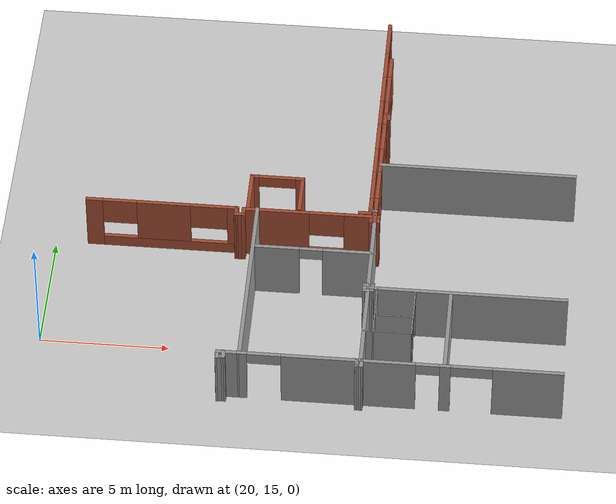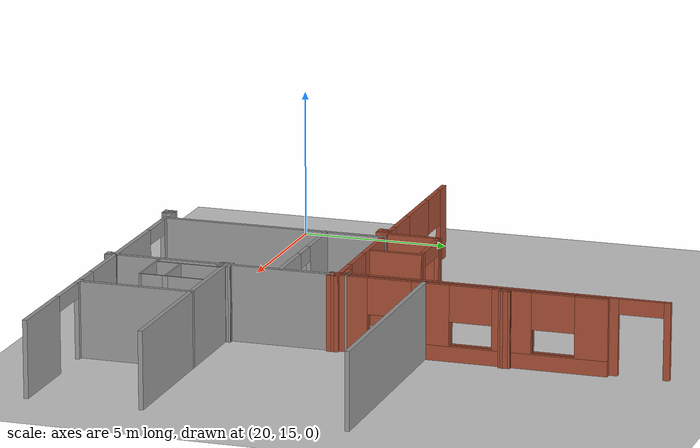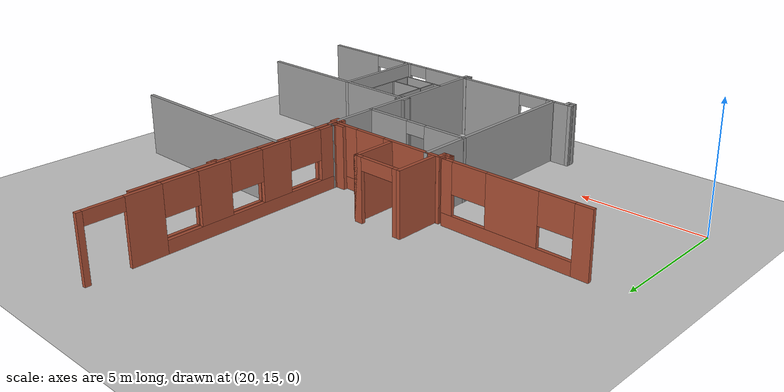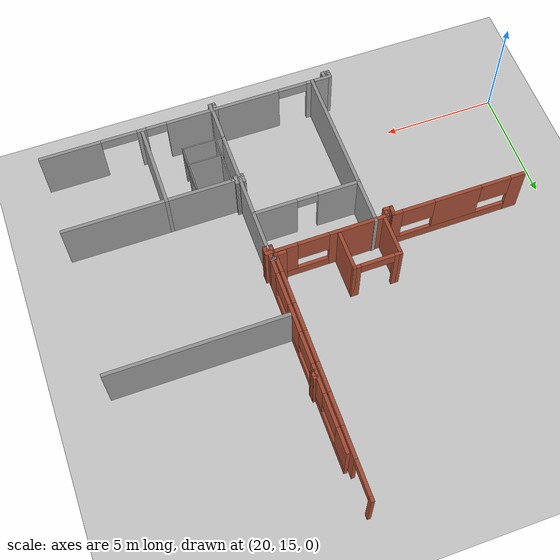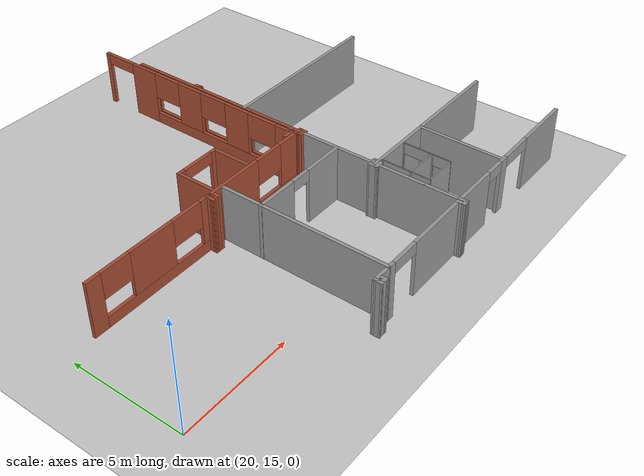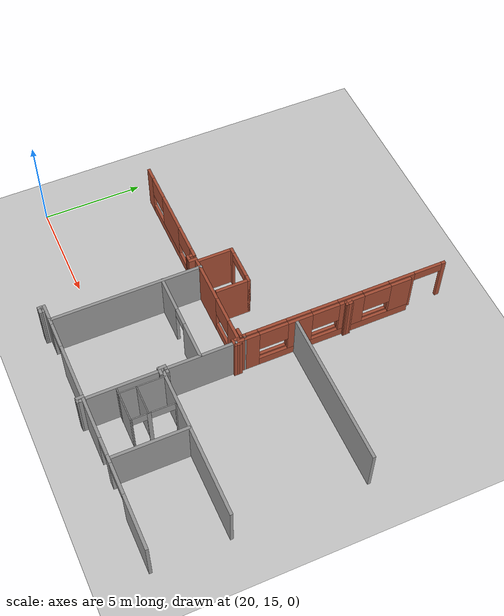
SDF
<sdf version="1.6">
 <world name="default">
  <model name="ground_plane">
   <static>1</static>
   <link name="link">
    <collision name="collision">
     <geometry><plane><normal>0 0 1</normal><size>100 100</size></plane></geometry>
     <surface><friction><ode><mu>100</mu><mu2>50</mu2></ode></friction></surface>
    </collision>
    <visual name="visual">
     <cast_shadows>0</cast_shadows>
     <geometry><plane><normal>0 0 1</normal><size>100 100</size></plane></geometry>
     <material>
      <script><uri>file://media/materials/scripts/gazebo.material</uri><name>Gazebo/Grey</name></script>
     </material>
    </visual>
   </link>
  </model>
  <model name="CVSSP">
   <pose>23.8714 24.094 0 0 -0 0</pose>
   <link name="Wall_115">
    <pose>12.4857 -11.244 0 0 -0 3.14117</pose>
    <visual name="Wall_115_Visual_0">
     <pose>-2.52803 0 1.25 0 -0 0</pose>
     <geometry><box><size>2.69541 0.15 2.5</size></box></geometry>
     <material>
      <script><uri>file://media/materials/scripts/gazebo.material</uri><name>Gazebo/Grey</name></script>
      <ambient>0.588235 0.588235 0.588235 1</ambient>
     </material>
    </visual>
    <collision name="Wall_115_Collision_0">
     <geometry><box><size>2.69541 0.15 2.5</size></box></geometry>
     <pose>-2.52803 0 1.25 0 -0 0</pose>
    </collision>
    <visual name="Wall_115_Visual_1">
     <pose>0.612242 0 1.25 0 -0 0</pose>
     <geometry><box><size>0.417444 0.15 2.5</size></box></geometry>
     <material>
      <script><uri>file://media/materials/scripts/gazebo.material</uri><name>Gazebo/Grey</name></script>
      <ambient>0.588235 0.588235 0.588235 1</ambient>
     </material>
    </visual>
    <collision name="Wall_115_Collision_1">
     <geometry><box><size>0.417444 0.15 2.5</size></box></geometry>
     <pose>0.612242 0 1.25 0 -0 0</pose>
    </collision>
    <visual name="Wall_115_Visual_2">
     <pose>2.79835 0 1.25 0 -0 0</pose>
     <geometry><box><size>2.15477 0.15 2.5</size></box></geometry>
     <material>
      <script><uri>file://media/materials/scripts/gazebo.material</uri><name>Gazebo/Grey</name></script>
      <ambient>0.588235 0.588235 0.588235 1</ambient>
     </material>
    </visual>
    <collision name="Wall_115_Collision_2">
     <geometry><box><size>2.15477 0.15 2.5</size></box></geometry>
     <pose>2.79835 0 1.25 0 -0 0</pose>
    </collision>
    <visual name="Wall_115_Visual_3">
     <pose>-0.388402 0 2.25 0 -0 0</pose>
     <geometry><box><size>1.58384 0.15 0.5</size></box></geometry>
     <material>
      <script><uri>file://media/materials/scripts/gazebo.material</uri><name>Gazebo/Grey</name></script>
      <ambient>0.588235 0.588235 0.588235 1</ambient>
     </material>
    </visual>
    <collision name="Wall_115_Collision_3">
     <geometry><box><size>1.58384 0.15 0.5</size></box></geometry>
     <pose>-0.388402 0 2.25 0 -0 0</pose>
    </collision>
    <visual name="Wall_115_Visual_4">
     <pose>1.27096 0 2.25 0 -0 0</pose>
     <geometry><box><size>0.9 0.15 0.5</size></box></geometry>
     <material>
      <script><uri>file://media/materials/scripts/gazebo.material</uri><name>Gazebo/Grey</name></script>
      <ambient>0.588235 0.588235 0.588235 1</ambient>
     </material>
    </visual>
    <collision name="Wall_115_Collision_4">
     <geometry><box><size>0.9 0.15 0.5</size></box></geometry>
     <pose>1.27096 0 2.25 0 -0 0</pose>
    </collision>
   </link>
   <link name="Wall_116">
    <collision name="Wall_116_Collision">
     <geometry><box><size>7.43734 0.15 2.5</size></box></geometry>
     <pose>0 0 1.25 0 -0 0</pose>
    </collision>
    <visual name="Wall_116_Visual">
     <pose>0 0 1.25 0 -0 0</pose>
     <geometry><box><size>7.43734 0.15 2.5</size></box></geometry>
     <material>
      <script><uri>file://media/materials/scripts/gazebo.material</uri><name>Gazebo/Grey</name></script>
      <ambient>1 1 1 1</ambient>
     </material>
    </visual>
    <pose>8.67152 -7.59872 0 0 -0 1.57447</pose>
   </link>
   <link name="Wall_118">
    <collision name="Wall_118_Collision">
     <geometry><box><size>0.6489 0.15 2.5</size></box></geometry>
     <pose>0 0 1.25 0 -0 0</pose>
    </collision>
    <visual name="Wall_118_Visual">
     <pose>0 0 1.25 0 -0 0</pose>
     <geometry><box><size>0.6489 0.15 2.5</size></box></geometry>
     <material>
      <script><uri>file://media/materials/scripts/gazebo.material</uri><name>Gazebo/Bricks</name></script>
      <ambient>1 1 1 1</ambient>
     </material>
    </visual>
    <pose>8.65546 -3.70564 0 0 0 -1.56013</pose>
   </link>
   <link name="Wall_119">
    <collision name="Wall_119_Collision">
     <geometry><box><size>0.297808 0.15 2.5</size></box></geometry>
     <pose>0 0 1.25 0 -0 0</pose>
    </collision>
    <visual name="Wall_119_Visual">
     <pose>0 0 1.25 0 -0 0</pose>
     <geometry><box><size>0.297808 0.15 2.5</size></box></geometry>
     <material>
      <script><uri>file://media/materials/scripts/gazebo.material</uri><name>Gazebo/Bricks</name></script>
      <ambient>1 1 1 1</ambient>
     </material>
    </visual>
    <pose>8.58427 -3.95789 0 0 0 -3.10353</pose>
   </link>
   <link name="Wall_120">
    <collision name="Wall_120_Collision">
     <geometry><box><size>0.331632 0.15 2.5</size></box></geometry>
     <pose>0 0 1.25 0 -0 0</pose>
    </collision>
    <visual name="Wall_120_Visual">
     <pose>0 0 1.25 0 -0 0</pose>
     <geometry><box><size>0.331632 0.15 2.5</size></box></geometry>
     <material>
      <script><uri>file://media/materials/scripts/gazebo.material</uri><name>Gazebo/Bricks</name></script>
      <ambient>1 1 1 1</ambient>
     </material>
    </visual>
    <pose>8.51042 -3.86996 0 0 -0 1.5708</pose>
   </link>
   <link name="Wall_121">
    <collision name="Wall_121_Collision">
     <geometry><box><size>0.41465 0.15 2.5</size></box></geometry>
     <pose>0 0 1.25 0 -0 0</pose>
    </collision>
    <visual name="Wall_121_Visual">
     <pose>0 0 1.25 0 -0 0</pose>
     <geometry><box><size>0.41465 0.15 2.5</size></box></geometry>
     <material>
      <script><uri>file://media/materials/scripts/gazebo.material</uri><name>Gazebo/Bricks</name></script>
      <ambient>1 1 1 1</ambient>
     </material>
    </visual>
    <pose>8.64275 -3.77922 0 0 -0 0</pose>
   </link>
   <link name="Wall_122">
    <collision name="Wall_122_Collision">
     <geometry><box><size>0.399527 0.15 2.5</size></box></geometry>
     <pose>0 0 1.25 0 -0 0</pose>
    </collision>
    <visual name="Wall_122_Visual">
     <pose>0 0 1.25 0 -0 0</pose>
     <geometry><box><size>0.399527 0.15 2.5</size></box></geometry>
     <material>
      <script><uri>file://media/materials/scripts/gazebo.material</uri><name>Gazebo/Bricks</name></script>
      <ambient>1 1 1 1</ambient>
     </material>
    </visual>
    <pose>8.77507 -3.90399 0 0 0 -1.5708</pose>
   </link>
   <link name="Wall_123">
    <collision name="Wall_123_Collision">
     <geometry><box><size>0.415082 0.15 2.5</size></box></geometry>
     <pose>0 0 1.25 0 -0 0</pose>
    </collision>
    <visual name="Wall_123_Visual">
     <pose>0 0 1.25 0 -0 0</pose>
     <geometry><box><size>0.415082 0.15 2.5</size></box></geometry>
     <material>
      <script><uri>file://media/materials/scripts/gazebo.material</uri><name>Gazebo/Bricks</name></script>
      <ambient>1 1 1 1</ambient>
     </material>
    </visual>
    <pose>8.64275 -4.02875 0 0 -0 3.14159</pose>
   </link>
   <link name="Wall_125">
    <collision name="Wall_125_Collision">
     <geometry><box><size>7.75 0.15 2.5</size></box></geometry>
     <pose>0 0 1.25 0 -0 0</pose>
    </collision>
    <visual name="Wall_125_Visual">
     <pose>0 0 1.25 0 -0 0</pose>
     <geometry><box><size>7.75 0.15 2.5</size></box></geometry>
     <material>
      <script><uri>file://media/materials/scripts/gazebo.material</uri><name>Gazebo/Grey</name></script>
      <ambient>1 1 1 1</ambient>
     </material>
    </visual>
    <pose>12.4797 -0.937315 0 0 -0 3.14159</pose>
   </link>
   <link name="Wall_127">
    <collision name="Wall_127_Collision">
     <geometry><box><size>7.75 0.15 2.5</size></box></geometry>
     <pose>0 0 1.25 0 -0 0</pose>
    </collision>
    <visual name="Wall_127_Visual">
     <pose>0 0 1.25 0 -0 0</pose>
     <geometry><box><size>7.75 0.15 2.5</size></box></geometry>
     <material>
      <script><uri>file://media/materials/scripts/gazebo.material</uri><name>Gazebo/Grey</name></script>
      <ambient>0.588235 0.588235 0.588235 1</ambient>
     </material>
    </visual>
    <pose>12.4552 -7.51532 0 0 -0 0</pose>
   </link>
   <link name="Wall_129">
    <collision name="Wall_129_Collision">
     <geometry><box><size>3.75 0.15 2.5</size></box></geometry>
     <pose>0 0 1.25 0 -0 0</pose>
    </collision>
    <visual name="Wall_129_Visual">
     <pose>0 0 1.25 0 -0 0</pose>
     <geometry><box><size>3.75 0.15 2.5</size></box></geometry>
     <material>
      <script><uri>file://media/materials/scripts/gazebo.material</uri><name>Gazebo/Grey</name></script>
      <ambient>1 1 1 1</ambient>
     </material>
    </visual>
    <pose>11.8522 -9.31531 0 0 0 -1.5708</pose>
   </link>
   <link name="Wall_465">
    <collision name="Wall_465_Collision">
     <geometry><box><size>0.529047 0.15 2.5</size></box></geometry>
     <pose>0 0 1.25 0 -0 0</pose>
    </collision>
    <visual name="Wall_465_Visual">
     <pose>0 0 1.25 0 -0 0</pose>
     <geometry><box><size>0.529047 0.15 2.5</size></box></geometry>
     <material>
      <script><uri>file://media/materials/scripts/gazebo.material</uri><name>Gazebo/Bricks</name></script>
      <ambient>1 1 1 1</ambient>
     </material>
    </visual>
    <pose>8.25042 -3.5996 0 0 -0 0.010433</pose>
   </link>
   <link name="Wall_466">
    <collision name="Wall_466_Collision">
     <geometry><box><size>0.28943 0.15 2.5</size></box></geometry>
     <pose>0 0 1.25 0 -0 0</pose>
    </collision>
    <visual name="Wall_466_Visual">
     <pose>0 0 1.25 0 -0 0</pose>
     <geometry><box><size>0.28943 0.15 2.5</size></box></geometry>
     <material>
      <script><uri>file://media/materials/scripts/gazebo.material</uri><name>Gazebo/Bricks</name></script>
      <ambient>1 1 1 1</ambient>
     </material>
    </visual>
    <pose>8.4463 -3.5282 0 0 -0 1.47944</pose>
   </link>
   <link name="Wall_468">
    <collision name="Wall_468_Collision">
     <geometry><box><size>1.81156 0.15 2.5</size></box></geometry>
     <pose>0 0 1.25 0 -0 0</pose>
    </collision>
    <visual name="Wall_468_Visual">
     <pose>0 0 1.25 0 -0 0</pose>
     <geometry><box><size>1.81156 0.15 2.5</size></box></geometry>
     <material>
      <script><uri>file://media/materials/scripts/gazebo.material</uri><name>Gazebo/Bricks</name></script>
      <ambient>1 1 1 1</ambient>
     </material>
    </visual>
    <pose>3.68791 -2.82478 0 0 -0 1.5708</pose>
   </link>
   <link name="Wall_469">
    <pose>4.68485 -1.99401 0 0 -0 0</pose>
    <visual name="Wall_469_Visual_0">
     <pose>-0.899938 0 1.25 0 -0 0</pose>
     <geometry><box><size>0.343992 0.15 2.5</size></box></geometry>
     <material>
      <script><uri>file://media/materials/scripts/gazebo.material</uri><name>Gazebo/Bricks</name></script>
      <ambient>1 1 1 1</ambient>
     </material>
    </visual>
    <collision name="Wall_469_Collision_0">
     <geometry><box><size>0.343992 0.15 2.5</size></box></geometry>
     <pose>-0.899938 0 1.25 0 -0 0</pose>
    </collision>
    <visual name="Wall_469_Visual_1">
     <pose>0.897049 0 1.25 0 -0 0</pose>
     <geometry><box><size>0.349769 0.15 2.5</size></box></geometry>
     <material>
      <script><uri>file://media/materials/scripts/gazebo.material</uri><name>Gazebo/Bricks</name></script>
      <ambient>1 1 1 1</ambient>
     </material>
    </visual>
    <collision name="Wall_469_Collision_1">
     <geometry><box><size>0.349769 0.15 2.5</size></box></geometry>
     <pose>0.897049 0 1.25 0 -0 0</pose>
    </collision>
    <visual name="Wall_469_Visual_2">
     <pose>-0.002889 0 2.25 0 -0 0</pose>
     <geometry><box><size>1.45011 0.15 0.5</size></box></geometry>
     <material>
      <script><uri>file://media/materials/scripts/gazebo.material</uri><name>Gazebo/Bricks</name></script>
      <ambient>1 1 1 1</ambient>
     </material>
    </visual>
    <collision name="Wall_469_Collision_2">
     <geometry><box><size>1.45011 0.15 0.5</size></box></geometry>
     <pose>-0.002889 0 2.25 0 -0 0</pose>
    </collision>
   </link>
   <link name="Wall_470">
    <collision name="Wall_470_Collision">
     <geometry><box><size>1.75 0.15 2.5</size></box></geometry>
     <pose>0 0 1.25 0 -0 0</pose>
    </collision>
    <visual name="Wall_470_Visual">
     <pose>0 0 1.25 0 -0 0</pose>
     <geometry><box><size>1.75 0.15 2.5</size></box></geometry>
     <material>
      <script><uri>file://media/materials/scripts/gazebo.material</uri><name>Gazebo/Bricks</name></script>
      <ambient>1 1 1 1</ambient>
     </material>
    </visual>
    <pose>5.68178 -2.79401 0 0 0 -1.5708</pose>
   </link>
   <link name="Wall_510">
    <pose>6.36165 -11.2424 0 0 -0 3.14159</pose>
    <visual name="Wall_510_Visual_0">
     <pose>-0.840975 0 1.25 0 -0 0</pose>
     <geometry><box><size>3.06805 0.15 2.5</size></box></geometry>
     <material>
      <script><uri>file://media/materials/scripts/gazebo.material</uri><name>Gazebo/Grey</name></script>
      <ambient>0.588235 0.588235 0.588235 1</ambient>
     </material>
    </visual>
    <collision name="Wall_510_Collision_0">
     <geometry><box><size>3.06805 0.15 2.5</size></box></geometry>
     <pose>-0.840975 0 1.25 0 -0 0</pose>
    </collision>
    <visual name="Wall_510_Visual_1">
     <pose>2.18353 0 1.25 0 -0 0</pose>
     <geometry><box><size>0.382947 0.15 2.5</size></box></geometry>
     <material>
      <script><uri>file://media/materials/scripts/gazebo.material</uri><name>Gazebo/Grey</name></script>
      <ambient>0.588235 0.588235 0.588235 1</ambient>
     </material>
    </visual>
    <collision name="Wall_510_Collision_1">
     <geometry><box><size>0.382947 0.15 2.5</size></box></geometry>
     <pose>2.18353 0 1.25 0 -0 0</pose>
    </collision>
    <visual name="Wall_510_Visual_2">
     <pose>1.34255 0 2.25 0 -0 0</pose>
     <geometry><box><size>1.299 0.15 0.5</size></box></geometry>
     <material>
      <script><uri>file://media/materials/scripts/gazebo.material</uri><name>Gazebo/Grey</name></script>
      <ambient>0.588235 0.588235 0.588235 1</ambient>
     </material>
    </visual>
    <collision name="Wall_510_Collision_2">
     <geometry><box><size>1.299 0.15 0.5</size></box></geometry>
     <pose>1.34255 0 2.25 0 -0 0</pose>
    </collision>
   </link>
   <link name="Wall_511">
    <collision name="Wall_511_Collision">
     <geometry><box><size>7.64004 0.15 2.5</size></box></geometry>
     <pose>0 0 1.25 0 -0 0</pose>
    </collision>
    <visual name="Wall_511_Visual">
     <pose>0 0 1.25 0 -0 0</pose>
     <geometry><box><size>7.64004 0.15 2.5</size></box></geometry>
     <material>
      <script><uri>file://media/materials/scripts/gazebo.material</uri><name>Gazebo/Grey</name></script>
      <ambient>0.588235 0.588235 0.588235 1</ambient>
     </material>
    </visual>
    <pose>4.07328 -7.49736 0 0 -0 1.5739</pose>
   </link>
   <link name="Wall_513">
    <pose>6.35679 -5.70156 0 0 -0 0</pose>
    <visual name="Wall_513_Visual_0">
     <pose>-1.42856 0 1.25 0 -0 0</pose>
     <geometry><box><size>1.89288 0.15 2.5</size></box></geometry>
     <material>
      <script><uri>file://media/materials/scripts/gazebo.material</uri><name>Gazebo/Grey</name></script>
      <ambient>0.588235 0.588235 0.588235 1</ambient>
     </material>
    </visual>
    <collision name="Wall_513_Collision_0">
     <geometry><box><size>1.89288 0.15 2.5</size></box></geometry>
     <pose>-1.42856 0 1.25 0 -0 0</pose>
    </collision>
    <visual name="Wall_513_Visual_1">
     <pose>1.39644 0 1.25 0 -0 0</pose>
     <geometry><box><size>1.95712 0.15 2.5</size></box></geometry>
     <material>
      <script><uri>file://media/materials/scripts/gazebo.material</uri><name>Gazebo/Grey</name></script>
      <ambient>0.588235 0.588235 0.588235 1</ambient>
     </material>
    </visual>
    <collision name="Wall_513_Collision_1">
     <geometry><box><size>1.95712 0.15 2.5</size></box></geometry>
     <pose>1.39644 0 1.25 0 -0 0</pose>
    </collision>
    <visual name="Wall_513_Visual_2">
     <pose>-0.032121 0 2.25 0 -0 0</pose>
     <geometry><box><size>0.9 0.15 0.5</size></box></geometry>
     <material>
      <script><uri>file://media/materials/scripts/gazebo.material</uri><name>Gazebo/Grey</name></script>
      <ambient>0.588235 0.588235 0.588235 1</ambient>
     </material>
    </visual>
    <collision name="Wall_513_Collision_2">
     <geometry><box><size>0.9 0.15 0.5</size></box></geometry>
     <pose>-0.032121 0 2.25 0 -0 0</pose>
    </collision>
   </link>
   <link name="Wall_515">
    <collision name="Wall_515_Collision">
     <geometry><box><size>0.96868 0.15 2.5</size></box></geometry>
     <pose>0 0 1.25 0 -0 0</pose>
    </collision>
    <visual name="Wall_515_Visual">
     <pose>0 0 1.25 0 -0 0</pose>
     <geometry><box><size>0.96868 0.15 2.5</size></box></geometry>
     <material>
      <script><uri>file://media/materials/scripts/gazebo.material</uri><name>Gazebo/Grey</name></script>
      <ambient>0.588235 0.588235 0.588235 1</ambient>
     </material>
    </visual>
    <pose>3.67558 -11.2435 0 0 0 -3.13878</pose>
   </link>
   <link name="Wall_516">
    <collision name="Wall_516_Collision">
     <geometry><box><size>0.299942 0.15 2.5</size></box></geometry>
     <pose>0 0 1.25 0 -0 0</pose>
    </collision>
    <visual name="Wall_516_Visual">
     <pose>0 0 1.25 0 -0 0</pose>
     <geometry><box><size>0.299942 0.15 2.5</size></box></geometry>
     <material>
      <script><uri>file://media/materials/scripts/gazebo.material</uri><name>Gazebo/Grey</name></script>
      <ambient>1 1 1 1</ambient>
     </material>
    </visual>
    <pose>3.26624 -11.3194 0 0 0 -1.5708</pose>
   </link>
   <link name="Wall_809">
    <pose>0.343033 -3.76669 0 0 -0 0</pose>
    <visual name="Wall_809_Visual_0">
     <pose>-2.66868 0 1.25 0 -0 0</pose>
     <geometry><box><size>0.662631 0.15 2.5</size></box></geometry>
     <material>
      <script><uri>file://media/materials/scripts/gazebo.material</uri><name>Gazebo/Bricks</name></script>
      <ambient>1 1 1 1</ambient>
     </material>
    </visual>
    <collision name="Wall_809_Collision_0">
     <geometry><box><size>0.662631 0.15 2.5</size></box></geometry>
     <pose>-2.66868 0 1.25 0 -0 0</pose>
    </collision>
    <visual name="Wall_809_Visual_1">
     <pose>0.331316 0 0.25 0 -0 0</pose>
     <geometry><box><size>5.33737 0.15 0.5</size></box></geometry>
     <material>
      <script><uri>file://media/materials/scripts/gazebo.material</uri><name>Gazebo/Bricks</name></script>
      <ambient>1 1 1 1</ambient>
     </material>
    </visual>
    <collision name="Wall_809_Collision_1">
     <geometry><box><size>5.33737 0.15 0.5</size></box></geometry>
     <pose>0.331316 0 0.25 0 -0 0</pose>
    </collision>
    <visual name="Wall_809_Visual_2">
     <pose>0.0492 0 1.5 0 -0 0</pose>
     <geometry><box><size>2.09736 0.15 2</size></box></geometry>
     <material>
      <script><uri>file://media/materials/scripts/gazebo.material</uri><name>Gazebo/Bricks</name></script>
      <ambient>1 1 1 1</ambient>
     </material>
    </visual>
    <collision name="Wall_809_Collision_2">
     <geometry><box><size>2.09736 0.15 2</size></box></geometry>
     <pose>0.0492 0 1.5 0 -0 0</pose>
    </collision>
    <visual name="Wall_809_Visual_3">
     <pose>2.76811 0 1.5 0 -0 0</pose>
     <geometry><box><size>0.463782 0.15 2</size></box></geometry>
     <material>
      <script><uri>file://media/materials/scripts/gazebo.material</uri><name>Gazebo/Bricks</name></script>
      <ambient>1 1 1 1</ambient>
     </material>
    </visual>
    <collision name="Wall_809_Collision_3">
     <geometry><box><size>0.463782 0.15 2</size></box></geometry>
     <pose>2.76811 0 1.5 0 -0 0</pose>
    </collision>
    <visual name="Wall_809_Visual_4">
     <pose>-1.66843 0 1.9 0 -0 0</pose>
     <geometry><box><size>1.33789 0.15 1.2</size></box></geometry>
     <material>
      <script><uri>file://media/materials/scripts/gazebo.material</uri><name>Gazebo/Bricks</name></script>
      <ambient>1 1 1 1</ambient>
     </material>
    </visual>
    <collision name="Wall_809_Collision_4">
     <geometry><box><size>1.33789 0.15 1.2</size></box></geometry>
     <pose>-1.66843 0 1.9 0 -0 0</pose>
    </collision>
    <visual name="Wall_809_Visual_5">
     <pose>1.81705 0 1.9 0 -0 0</pose>
     <geometry><box><size>1.43833 0.15 1.2</size></box></geometry>
     <material>
      <script><uri>file://media/materials/scripts/gazebo.material</uri><name>Gazebo/Bricks</name></script>
      <ambient>1 1 1 1</ambient>
     </material>
    </visual>
    <collision name="Wall_809_Collision_5">
     <geometry><box><size>1.43833 0.15 1.2</size></box></geometry>
     <pose>1.81705 0 1.9 0 -0 0</pose>
    </collision>
   </link>
   <link name="Wall_810">
    <collision name="Wall_810_Collision">
     <geometry><box><size>0.453959 0.15 2.5</size></box></geometry>
     <pose>0 0 1.25 0 -0 0</pose>
    </collision>
    <visual name="Wall_810_Visual">
     <pose>0 0 1.25 0 -0 0</pose>
     <geometry><box><size>0.453959 0.15 2.5</size></box></geometry>
     <material>
      <script><uri>file://media/materials/scripts/gazebo.material</uri><name>Gazebo/Bricks</name></script>
      <ambient>1 1 1 1</ambient>
     </material>
    </visual>
    <pose>3.26225 -3.93012 0 0 0 -1.60885</pose>
   </link>
   <link name="Wall_811">
    <collision name="Wall_811_Collision">
     <geometry><box><size>0.429611 0.15 2.5</size></box></geometry>
     <pose>0 0 1.25 0 -0 0</pose>
    </collision>
    <visual name="Wall_811_Visual">
     <pose>0 0 1.25 0 -0 0</pose>
     <geometry><box><size>0.429611 0.15 2.5</size></box></geometry>
     <material>
      <script><uri>file://media/materials/scripts/gazebo.material</uri><name>Gazebo/Bricks</name></script>
      <ambient>1 1 1 1</ambient>
     </material>
    </visual>
    <pose>3.39627 -4.08199 0 0 -0 0</pose>
   </link>
   <link name="Wall_812">
    <collision name="Wall_812_Collision">
     <geometry><box><size>0.451586 0.15 2.5</size></box></geometry>
     <pose>0 0 1.25 0 -0 0</pose>
    </collision>
    <visual name="Wall_812_Visual">
     <pose>0 0 1.25 0 -0 0</pose>
     <geometry><box><size>0.451586 0.15 2.5</size></box></geometry>
     <material>
      <script><uri>file://media/materials/scripts/gazebo.material</uri><name>Gazebo/Bricks</name></script>
      <ambient>1 1 1 1</ambient>
     </material>
    </visual>
    <pose>3.53608 -3.93164 0 0 -0 1.5708</pose>
   </link>
   <link name="Wall_813">
    <pose>6.02262 -3.77551 0 0 -0 0.002326</pose>
    <visual name="Wall_813_Visual_0">
     <pose>-1.25053 0 1.25 0 -0 0</pose>
     <geometry><box><size>2.62204 0.15 2.5</size></box></geometry>
     <material>
      <script><uri>file://media/materials/scripts/gazebo.material</uri><name>Gazebo/Bricks</name></script>
      <ambient>1 1 1 1</ambient>
     </material>
    </visual>
    <collision name="Wall_813_Collision_0">
     <geometry><box><size>2.62204 0.15 2.5</size></box></geometry>
     <pose>-1.25053 0 1.25 0 -0 0</pose>
    </collision>
    <visual name="Wall_813_Visual_1">
     <pose>1.31102 0 0.25 0 -0 0</pose>
     <geometry><box><size>2.50105 0.15 0.5</size></box></geometry>
     <material>
      <script><uri>file://media/materials/scripts/gazebo.material</uri><name>Gazebo/Bricks</name></script>
      <ambient>1 1 1 1</ambient>
     </material>
    </visual>
    <collision name="Wall_813_Collision_1">
     <geometry><box><size>2.50105 0.15 0.5</size></box></geometry>
     <pose>1.31102 0 0.25 0 -0 0</pose>
    </collision>
    <visual name="Wall_813_Visual_2">
     <pose>1.9938 0 1.5 0 -0 0</pose>
     <geometry><box><size>1.13549 0.15 2</size></box></geometry>
     <material>
      <script><uri>file://media/materials/scripts/gazebo.material</uri><name>Gazebo/Bricks</name></script>
      <ambient>1 1 1 1</ambient>
     </material>
    </visual>
    <collision name="Wall_813_Collision_2">
     <geometry><box><size>1.13549 0.15 2</size></box></geometry>
     <pose>1.9938 0 1.5 0 -0 0</pose>
    </collision>
    <visual name="Wall_813_Visual_3">
     <pose>0.743275 0 1.9 0 -0 0</pose>
     <geometry><box><size>1.36556 0.15 1.2</size></box></geometry>
     <material>
      <script><uri>file://media/materials/scripts/gazebo.material</uri><name>Gazebo/Bricks</name></script>
      <ambient>1 1 1 1</ambient>
     </material>
    </visual>
    <collision name="Wall_813_Collision_3">
     <geometry><box><size>1.36556 0.15 1.2</size></box></geometry>
     <pose>0.743275 0 1.9 0 -0 0</pose>
    </collision>
   </link>
   <link name="Wall_815">
    <collision name="Wall_815_Collision">
     <geometry><box><size>0.199149 0.15 2.5</size></box></geometry>
     <pose>0 0 1.25 0 -0 0</pose>
    </collision>
    <visual name="Wall_815_Visual">
     <pose>0 0 1.25 0 -0 0</pose>
     <geometry><box><size>0.199149 0.15 2.5</size></box></geometry>
     <material>
      <script><uri>file://media/materials/scripts/gazebo.material</uri><name>Gazebo/Bricks</name></script>
      <ambient>1 1 1 1</ambient>
     </material>
    </visual>
    <pose>8.74892 1.83972 0 0 -0 0</pose>
   </link>
   <link name="Wall_816">
    <collision name="Wall_816_Collision">
     <geometry><box><size>0.384892 0.15 2.5</size></box></geometry>
     <pose>0 0 1.25 0 -0 0</pose>
    </collision>
    <visual name="Wall_816_Visual">
     <pose>0 0 1.25 0 -0 0</pose>
     <geometry><box><size>0.384892 0.15 2.5</size></box></geometry>
     <material>
      <script><uri>file://media/materials/scripts/gazebo.material</uri><name>Gazebo/Bricks</name></script>
      <ambient>1 1 1 1</ambient>
     </material>
    </visual>
    <pose>8.77916 1.72252 0 0 0 -1.52245</pose>
   </link>
   <link name="Wall_817">
    <collision name="Wall_817_Collision">
     <geometry><box><size>0.24482 0.15 2.5</size></box></geometry>
     <pose>0 0 1.25 0 -0 0</pose>
    </collision>
    <visual name="Wall_817_Visual">
     <pose>0 0 1.25 0 -0 0</pose>
     <geometry><box><size>0.24482 0.15 2.5</size></box></geometry>
     <material>
      <script><uri>file://media/materials/scripts/gazebo.material</uri><name>Gazebo/Bricks</name></script>
      <ambient>1 1 1 1</ambient>
     </material>
    </visual>
    <pose>8.73757 1.60343 0 0 0 -3.10161</pose>
   </link>
   <link name="Wall_854">
    <collision name="Wall_854_Collision">
     <geometry><box><size>0.254118 0.15 2.5</size></box></geometry>
     <pose>0 0 1.25 0 -0 0</pose>
    </collision>
    <visual name="Wall_854_Visual">
     <pose>0 0 1.25 0 -0 0</pose>
     <geometry><box><size>0.254118 0.15 2.5</size></box></geometry>
     <material>
      <script><uri>file://media/materials/scripts/gazebo.material</uri><name>Gazebo/Grey</name></script>
      <ambient>1 1 1 1</ambient>
     </material>
    </visual>
    <pose>3.26333 -11.444 0 0 0 -1.48765</pose>
   </link>
   <link name="Wall_855">
    <collision name="Wall_855_Collision">
     <geometry><box><size>0.383617 0.15 2.5</size></box></geometry>
     <pose>0 0 1.25 0 -0 0</pose>
    </collision>
    <visual name="Wall_855_Visual">
     <pose>0 0 1.25 0 -0 0</pose>
     <geometry><box><size>0.383617 0.15 2.5</size></box></geometry>
     <material>
      <script><uri>file://media/materials/scripts/gazebo.material</uri><name>Gazebo/Grey</name></script>
      <ambient>1 1 1 1</ambient>
     </material>
    </visual>
    <pose>3.38438 -11.4958 0 0 -0 0</pose>
   </link>
   <link name="Wall_856">
    <collision name="Wall_856_Collision">
     <geometry><box><size>0.392258 0.15 2.5</size></box></geometry>
     <pose>0 0 1.25 0 -0 0</pose>
    </collision>
    <visual name="Wall_856_Visual">
     <pose>0 0 1.25 0 -0 0</pose>
     <geometry><box><size>0.392258 0.15 2.5</size></box></geometry>
     <material>
      <script><uri>file://media/materials/scripts/gazebo.material</uri><name>Gazebo/Grey</name></script>
      <ambient>1 1 1 1</ambient>
     </material>
    </visual>
    <pose>3.49679 -11.3748 0 0 -0 1.6065</pose>
   </link>
   <link name="Wall_858">
    <collision name="Wall_858_Collision">
     <geometry><box><size>0.418183 0.15 2.5</size></box></geometry>
     <pose>0 0 1.25 0 -0 0</pose>
    </collision>
    <visual name="Wall_858_Visual">
     <pose>0 0 1.25 0 -0 0</pose>
     <geometry><box><size>0.418183 0.15 2.5</size></box></geometry>
     <material>
      <script><uri>file://media/materials/scripts/gazebo.material</uri><name>Gazebo/Grey</name></script>
      <ambient>1 1 1 1</ambient>
     </material>
    </visual>
    <pose>8.71931 -11.3618 0 0 0 -1.60304</pose>
   </link>
   <link name="Wall_859">
    <collision name="Wall_859_Collision">
     <geometry><box><size>0.314512 0.15 2.5</size></box></geometry>
     <pose>0 0 1.25 0 -0 0</pose>
    </collision>
    <visual name="Wall_859_Visual">
     <pose>0 0 1.25 0 -0 0</pose>
     <geometry><box><size>0.314512 0.15 2.5</size></box></geometry>
     <material>
      <script><uri>file://media/materials/scripts/gazebo.material</uri><name>Gazebo/Grey</name></script>
      <ambient>1 1 1 1</ambient>
     </material>
    </visual>
    <pose>8.63284 -11.5002 0 0 0 -3.08901</pose>
   </link>
   <link name="Wall_860">
    <collision name="Wall_860_Collision">
     <geometry><box><size>0.418183 0.15 2.5</size></box></geometry>
     <pose>0 0 1.25 0 -0 0</pose>
    </collision>
    <visual name="Wall_860_Visual">
     <pose>0 0 1.25 0 -0 0</pose>
     <geometry><box><size>0.418183 0.15 2.5</size></box></geometry>
     <material>
      <script><uri>file://media/materials/scripts/gazebo.material</uri><name>Gazebo/Grey</name></script>
      <ambient>1 1 1 1</ambient>
     </material>
    </visual>
    <pose>8.54637 -11.3705 0 0 -0 1.60304</pose>
   </link>
   <link name="Wall_862">
    <collision name="Wall_862_Collision">
     <geometry><box><size>0.457357 0.15 2.5</size></box></geometry>
     <pose>0 0 1.25 0 -0 0</pose>
    </collision>
    <visual name="Wall_862_Visual">
     <pose>0 0 1.25 0 -0 0</pose>
     <geometry><box><size>0.457357 0.15 2.5</size></box></geometry>
     <material>
      <script><uri>file://media/materials/scripts/gazebo.material</uri><name>Gazebo/Grey</name></script>
      <ambient>1 1 1 1</ambient>
     </material>
    </visual>
    <pose>8.68766 -7.36008 0 0 0 -3.09906</pose>
   </link>
   <link name="Wall_863">
    <collision name="Wall_863_Collision">
     <geometry><box><size>0.431212 0.15 2.5</size></box></geometry>
     <pose>0 0 1.25 0 -0 0</pose>
    </collision>
    <visual name="Wall_863_Visual">
     <pose>0 0 1.25 0 -0 0</pose>
     <geometry><box><size>0.431212 0.15 2.5</size></box></geometry>
     <material>
      <script><uri>file://media/materials/scripts/gazebo.material</uri><name>Gazebo/Grey</name></script>
      <ambient>1 1 1 1</ambient>
     </material>
    </visual>
    <pose>8.53729 -7.50718 0 0 0 -1.54754</pose>
   </link>
   <link name="Wall_864">
    <collision name="Wall_864_Collision">
     <geometry><box><size>0.437748 0.15 2.5</size></box></geometry>
     <pose>0 0 1.25 0 -0 0</pose>
    </collision>
    <visual name="Wall_864_Visual">
     <pose>0 0 1.25 0 -0 0</pose>
     <geometry><box><size>0.437748 0.15 2.5</size></box></geometry>
     <material>
      <script><uri>file://media/materials/scripts/gazebo.material</uri><name>Gazebo/Grey</name></script>
      <ambient>1 1 1 1</ambient>
     </material>
    </visual>
    <pose>8.6844 -7.64775 0 0 -0 0</pose>
   </link>
   <link name="Wall_865">
    <collision name="Wall_865_Collision">
     <geometry><box><size>0.444502 0.15 2.5</size></box></geometry>
     <pose>0 0 1.25 0 -0 0</pose>
    </collision>
    <visual name="Wall_865_Visual">
     <pose>0 0 1.25 0 -0 0</pose>
     <geometry><box><size>0.444502 0.15 2.5</size></box></geometry>
     <material>
      <script><uri>file://media/materials/scripts/gazebo.material</uri><name>Gazebo/Grey</name></script>
      <ambient>1 1 1 1</ambient>
     </material>
    </visual>
    <pose>8.83477 -7.50065 0 0 -0 1.52638</pose>
   </link>
   <link name="Wall_868">
    <collision name="Wall_868_Collision">
     <geometry><box><size>1.88039 0.05 2.5</size></box></geometry>
     <pose>0 0 1.25 0 -0 0</pose>
    </collision>
    <visual name="Wall_868_Visual">
     <pose>0 0 1.25 0 -0 0</pose>
     <geometry><box><size>1.88039 0.05 2.5</size></box></geometry>
     <material>
      <script><uri>file://media/materials/scripts/gazebo.material</uri><name>Gazebo/Grey</name></script>
      <ambient>1 1 1 1</ambient>
     </material>
    </visual>
    <pose>9.57313 -9.72726 0 0 -0 0</pose>
   </link>
   <link name="Wall_869">
    <pose>10.4916 -8.67726 0 0 -0 1.5675</pose>
    <visual name="Wall_869_Visual_0">
     <pose>-1.02983 0 1.25 0 -0 0</pose>
     <geometry><box><size>0.090343 0.05 2.5</size></box></geometry>
     <material>
      <script><uri>file://media/materials/scripts/gazebo.material</uri><name>Gazebo/Grey</name></script>
      <ambient>1 1 1 1</ambient>
     </material>
    </visual>
    <collision name="Wall_869_Collision_0">
     <geometry><box><size>0.090343 0.05 2.5</size></box></geometry>
     <pose>-1.02983 0 1.25 0 -0 0</pose>
    </collision>
    <visual name="Wall_869_Visual_1">
     <pose>-0.197948 0 1.25 0 -0 0</pose>
     <geometry><box><size>0.190812 0.05 2.5</size></box></geometry>
     <material>
      <script><uri>file://media/materials/scripts/gazebo.material</uri><name>Gazebo/Grey</name></script>
      <ambient>1 1 1 1</ambient>
     </material>
    </visual>
    <collision name="Wall_869_Collision_1">
     <geometry><box><size>0.190812 0.05 2.5</size></box></geometry>
     <pose>-0.197948 0 1.25 0 -0 0</pose>
    </collision>
    <visual name="Wall_869_Visual_2">
     <pose>1.04926 0 1.25 0 -0 0</pose>
     <geometry><box><size>0.051484 0.05 2.5</size></box></geometry>
     <material>
      <script><uri>file://media/materials/scripts/gazebo.material</uri><name>Gazebo/Grey</name></script>
      <ambient>1 1 1 1</ambient>
     </material>
    </visual>
    <collision name="Wall_869_Collision_2">
     <geometry><box><size>0.051484 0.05 2.5</size></box></geometry>
     <pose>1.04926 0 1.25 0 -0 0</pose>
    </collision>
    <visual name="Wall_869_Visual_3">
     <pose>-0.639005 0 2.25 0 -0 0</pose>
     <geometry><box><size>0.691303 0.05 0.5</size></box></geometry>
     <material>
      <script><uri>file://media/materials/scripts/gazebo.material</uri><name>Gazebo/Grey</name></script>
      <ambient>1 1 1 1</ambient>
     </material>
    </visual>
    <collision name="Wall_869_Collision_3">
     <geometry><box><size>0.691303 0.05 0.5</size></box></geometry>
     <pose>-0.639005 0 2.25 0 -0 0</pose>
    </collision>
    <visual name="Wall_869_Visual_4">
     <pose>0.460487 0 2.25 0 -0 0</pose>
     <geometry><box><size>1.12606 0.05 0.5</size></box></geometry>
     <material>
      <script><uri>file://media/materials/scripts/gazebo.material</uri><name>Gazebo/Grey</name></script>
      <ambient>1 1 1 1</ambient>
     </material>
    </visual>
    <collision name="Wall_869_Collision_4">
     <geometry><box><size>1.12606 0.05 0.5</size></box></geometry>
     <pose>0.460487 0 2.25 0 -0 0</pose>
    </collision>
   </link>
   <link name="Wall_871">
    <collision name="Wall_871_Collision">
     <geometry><box><size>1.5 0.05 2.5</size></box></geometry>
     <pose>0 0 1.25 0 -0 0</pose>
    </collision>
    <visual name="Wall_871_Visual">
     <pose>0 0 1.25 0 -0 0</pose>
     <geometry><box><size>1.5 0.05 2.5</size></box></geometry>
     <material>
      <script><uri>file://media/materials/scripts/gazebo.material</uri><name>Gazebo/Grey</name></script>
      <ambient>1 1 1 1</ambient>
     </material>
    </visual>
    <pose>9.75613 -8.89026 0 0 -0 0</pose>
   </link>
   <link name="Wall_873">
    <collision name="Wall_873_Collision">
     <geometry><box><size>0.899718 0.05 2.5</size></box></geometry>
     <pose>0 0 1.25 0 -0 0</pose>
    </collision>
    <visual name="Wall_873_Visual">
     <pose>0 0 1.25 0 -0 0</pose>
     <geometry><box><size>0.899718 0.05 2.5</size></box></geometry>
     <material>
      <script><uri>file://media/materials/scripts/gazebo.material</uri><name>Gazebo/Grey</name></script>
      <ambient>1 1 1 1</ambient>
     </material>
    </visual>
    <pose>9.03113 -9.31526 0 0 0 -1.5708</pose>
   </link>
   <link name="Wall_875">
    <collision name="Wall_875_Collision">
     <geometry><box><size>1.40028 0.05 2.5</size></box></geometry>
     <pose>0 0 1.25 0 -0 0</pose>
    </collision>
    <visual name="Wall_875_Visual">
     <pose>0 0 1.25 0 -0 0</pose>
     <geometry><box><size>1.40028 0.05 2.5</size></box></geometry>
     <material>
      <script><uri>file://media/materials/scripts/gazebo.material</uri><name>Gazebo/Grey</name></script>
      <ambient>1 1 1 1</ambient>
     </material>
    </visual>
    <pose>9.03113 -8.21526 0 0 -0 1.5708</pose>
   </link>
   <link name="Wall_89">
    <pose>8.45266 1.71622 0 0 0 -1.5708</pose>
    <visual name="Wall_89_Visual_0">
     <pose>-5.14167 0 1.25 0 -0 0</pose>
     <geometry><box><size>0.216665 0.15 2.5</size></box></geometry>
     <material>
      <script><uri>file://media/materials/scripts/gazebo.material</uri><name>Gazebo/Bricks</name></script>
      <ambient>1 1 1 1</ambient>
     </material>
    </visual>
    <collision name="Wall_89_Collision_0">
     <geometry><box><size>0.216665 0.15 2.5</size></box></geometry>
     <pose>-5.14167 0 1.25 0 -0 0</pose>
    </collision>
    <visual name="Wall_89_Visual_1">
     <pose>-2.91109 0 1.25 0 -0 0</pose>
     <geometry><box><size>1.35565 0.15 2.5</size></box></geometry>
     <material>
      <script><uri>file://media/materials/scripts/gazebo.material</uri><name>Gazebo/Bricks</name></script>
      <ambient>1 1 1 1</ambient>
     </material>
    </visual>
    <collision name="Wall_89_Collision_1">
     <geometry><box><size>1.35565 0.15 2.5</size></box></geometry>
     <pose>-2.91109 0 1.25 0 -0 0</pose>
    </collision>
    <visual name="Wall_89_Visual_2">
     <pose>1.50837 0 0.25 0 -0 0</pose>
     <geometry><box><size>7.48326 0.15 0.5</size></box></geometry>
     <material>
      <script><uri>file://media/materials/scripts/gazebo.material</uri><name>Gazebo/Bricks</name></script>
      <ambient>1 1 1 1</ambient>
     </material>
    </visual>
    <collision name="Wall_89_Collision_2">
     <geometry><box><size>7.48326 0.15 0.5</size></box></geometry>
     <pose>1.50837 0 0.25 0 -0 0</pose>
    </collision>
    <visual name="Wall_89_Visual_3">
     <pose>-0.207681 0 1.5 0 -0 0</pose>
     <geometry><box><size>1.28154 0.15 2</size></box></geometry>
     <material>
      <script><uri>file://media/materials/scripts/gazebo.material</uri><name>Gazebo/Bricks</name></script>
      <ambient>1 1 1 1</ambient>
     </material>
    </visual>
    <collision name="Wall_89_Collision_3">
     <geometry><box><size>1.28154 0.15 2</size></box></geometry>
     <pose>-0.207681 0 1.5 0 -0 0</pose>
    </collision>
    <visual name="Wall_89_Visual_4">
     <pose>2.43389 0 1.5 0 -0 0</pose>
     <geometry><box><size>1.2518 0.15 2</size></box></geometry>
     <material>
      <script><uri>file://media/materials/scripts/gazebo.material</uri><name>Gazebo/Bricks</name></script>
      <ambient>1 1 1 1</ambient>
     </material>
    </visual>
    <collision name="Wall_89_Collision_4">
     <geometry><box><size>1.2518 0.15 2</size></box></geometry>
     <pose>2.43389 0 1.5 0 -0 0</pose>
    </collision>
    <visual name="Wall_89_Visual_5">
     <pose>4.882 0 1.5 0 -0 0</pose>
     <geometry><box><size>0.736008 0.15 2</size></box></geometry>
     <material>
      <script><uri>file://media/materials/scripts/gazebo.material</uri><name>Gazebo/Bricks</name></script>
      <ambient>1 1 1 1</ambient>
     </material>
    </visual>
    <collision name="Wall_89_Collision_5">
     <geometry><box><size>0.736008 0.15 2</size></box></geometry>
     <pose>4.882 0 1.5 0 -0 0</pose>
    </collision>
    <visual name="Wall_89_Visual_6">
     <pose>-1.54086 0 1.9 0 -0 0</pose>
     <geometry><box><size>1.38481 0.15 1.2</size></box></geometry>
     <material>
      <script><uri>file://media/materials/scripts/gazebo.material</uri><name>Gazebo/Bricks</name></script>
      <ambient>1 1 1 1</ambient>
     </material>
    </visual>
    <collision name="Wall_89_Collision_6">
     <geometry><box><size>1.38481 0.15 1.2</size></box></geometry>
     <pose>-1.54086 0 1.9 0 -0 0</pose>
    </collision>
    <visual name="Wall_89_Visual_7">
     <pose>1.12054 0 1.9 0 -0 0</pose>
     <geometry><box><size>1.3749 0.15 1.2</size></box></geometry>
     <material>
      <script><uri>file://media/materials/scripts/gazebo.material</uri><name>Gazebo/Bricks</name></script>
      <ambient>1 1 1 1</ambient>
     </material>
    </visual>
    <collision name="Wall_89_Collision_7">
     <geometry><box><size>1.3749 0.15 1.2</size></box></geometry>
     <pose>1.12054 0 1.9 0 -0 0</pose>
    </collision>
    <visual name="Wall_89_Visual_8">
     <pose>3.78689 0 1.9 0 -0 0</pose>
     <geometry><box><size>1.4542 0.15 1.2</size></box></geometry>
     <material>
      <script><uri>file://media/materials/scripts/gazebo.material</uri><name>Gazebo/Bricks</name></script>
      <ambient>1 1 1 1</ambient>
     </material>
    </visual>
    <collision name="Wall_89_Collision_8">
     <geometry><box><size>1.4542 0.15 1.2</size></box></geometry>
     <pose>3.78689 0 1.9 0 -0 0</pose>
    </collision>
    <visual name="Wall_89_Visual_9">
     <pose>-4.31112 0 2.25 0 -0 0</pose>
     <geometry><box><size>1.44442 0.15 0.5</size></box></geometry>
     <material>
      <script><uri>file://media/materials/scripts/gazebo.material</uri><name>Gazebo/Bricks</name></script>
      <ambient>1 1 1 1</ambient>
     </material>
    </visual>
    <collision name="Wall_89_Collision_9">
     <geometry><box><size>1.44442 0.15 0.5</size></box></geometry>
     <pose>-4.31112 0 2.25 0 -0 0</pose>
    </collision>
   </link>
   <link name="Wall_91">
    <collision name="Wall_91_Collision">
     <geometry><box><size>0.350158 0.15 2.5</size></box></geometry>
     <pose>0 0 1.25 0 -0 0</pose>
    </collision>
    <visual name="Wall_91_Visual">
     <pose>0 0 1.25 0 -0 0</pose>
     <geometry><box><size>0.350158 0.15 2.5</size></box></geometry>
     <material>
      <script><uri>file://media/materials/scripts/gazebo.material</uri><name>Gazebo/Grey</name></script>
      <ambient>1 1 1 1</ambient>
     </material>
    </visual>
    <pose>8.55273 -3.45749 0 0 -0 0.012863</pose>
   </link>
   <link name="Wall_92">
    <collision name="Wall_92_Collision">
     <geometry><box><size>0.350158 0.15 2.5</size></box></geometry>
     <pose>0 0 1.25 0 -0 0</pose>
    </collision>
    <visual name="Wall_92_Visual">
     <pose>0 0 1.25 0 -0 0</pose>
     <geometry><box><size>0.350158 0.15 2.5</size></box></geometry>
     <material>
      <script><uri>file://media/materials/scripts/gazebo.material</uri><name>Gazebo/Bricks</name></script>
      <ambient>1 1 1 1</ambient>
     </material>
    </visual>
    <pose>8.55273 -3.45749 0 0 0 -3.12873</pose>
   </link>
   <link name="Wall_94">
    <pose>8.65296 0.7494 0 0 -0 1.57076</pose>
    <visual name="Wall_94_Visual_0">
     <pose>-3.90893 0 1.25 0 -0 0</pose>
     <geometry><box><size>0.743346 0.15 2.5</size></box></geometry>
     <material>
      <script><uri>file://media/materials/scripts/gazebo.material</uri><name>Gazebo/Bricks</name></script>
      <ambient>1 1 1 1</ambient>
     </material>
    </visual>
    <collision name="Wall_94_Collision_0">
     <geometry><box><size>0.743346 0.15 2.5</size></box></geometry>
     <pose>-3.90893 0 1.25 0 -0 0</pose>
    </collision>
    <visual name="Wall_94_Visual_1">
     <pose>0.371673 0 0.25 0 -0 0</pose>
     <geometry><box><size>7.81786 0.15 0.5</size></box></geometry>
     <material>
      <script><uri>file://media/materials/scripts/gazebo.material</uri><name>Gazebo/Bricks</name></script>
      <ambient>1 1 1 1</ambient>
     </material>
    </visual>
    <collision name="Wall_94_Collision_1">
     <geometry><box><size>7.81786 0.15 0.5</size></box></geometry>
     <pose>0.371673 0 0.25 0 -0 0</pose>
    </collision>
    <visual name="Wall_94_Visual_2">
     <pose>-1.47202 0 1.5 0 -0 0</pose>
     <geometry><box><size>1.24189 0.15 2</size></box></geometry>
     <material>
      <script><uri>file://media/materials/scripts/gazebo.material</uri><name>Gazebo/Bricks</name></script>
      <ambient>1 1 1 1</ambient>
     </material>
    </visual>
    <collision name="Wall_94_Collision_2">
     <geometry><box><size>1.24189 0.15 2</size></box></geometry>
     <pose>-1.47202 0 1.5 0 -0 0</pose>
    </collision>
    <visual name="Wall_94_Visual_3">
     <pose>1.1745 0 1.5 0 -0 0</pose>
     <geometry><box><size>1.28154 0.15 2</size></box></geometry>
     <material>
      <script><uri>file://media/materials/scripts/gazebo.material</uri><name>Gazebo/Bricks</name></script>
      <ambient>1 1 1 1</ambient>
     </material>
    </visual>
    <collision name="Wall_94_Collision_3">
     <geometry><box><size>1.28154 0.15 2</size></box></geometry>
     <pose>1.1745 0 1.5 0 -0 0</pose>
    </collision>
    <visual name="Wall_94_Visual_4">
     <pose>3.7453 0 1.5 0 -0 0</pose>
     <geometry><box><size>1.0706 0.15 2</size></box></geometry>
     <material>
      <script><uri>file://media/materials/scripts/gazebo.material</uri><name>Gazebo/Bricks</name></script>
      <ambient>1 1 1 1</ambient>
     </material>
    </visual>
    <collision name="Wall_94_Collision_4">
     <geometry><box><size>1.0706 0.15 2</size></box></geometry>
     <pose>3.7453 0 1.5 0 -0 0</pose>
    </collision>
    <visual name="Wall_94_Visual_5">
     <pose>-2.81511 0 1.9 0 -0 0</pose>
     <geometry><box><size>1.44429 0.15 1.2</size></box></geometry>
     <material>
      <script><uri>file://media/materials/scripts/gazebo.material</uri><name>Gazebo/Bricks</name></script>
      <ambient>1 1 1 1</ambient>
     </material>
    </visual>
    <collision name="Wall_94_Collision_5">
     <geometry><box><size>1.44429 0.15 1.2</size></box></geometry>
     <pose>-2.81511 0 1.9 0 -0 0</pose>
    </collision>
    <visual name="Wall_94_Visual_6">
     <pose>-0.158672 0 1.9 0 -0 0</pose>
     <geometry><box><size>1.38481 0.15 1.2</size></box></geometry>
     <material>
      <script><uri>file://media/materials/scripts/gazebo.material</uri><name>Gazebo/Bricks</name></script>
      <ambient>1 1 1 1</ambient>
     </material>
    </visual>
    <collision name="Wall_94_Collision_6">
     <geometry><box><size>1.38481 0.15 1.2</size></box></geometry>
     <pose>-0.158672 0 1.9 0 -0 0</pose>
    </collision>
    <visual name="Wall_94_Visual_7">
     <pose>2.51264 0 1.9 0 -0 0</pose>
     <geometry><box><size>1.39473 0.15 1.2</size></box></geometry>
     <material>
      <script><uri>file://media/materials/scripts/gazebo.material</uri><name>Gazebo/Bricks</name></script>
      <ambient>1 1 1 1</ambient>
     </material>
    </visual>
    <collision name="Wall_94_Collision_7">
     <geometry><box><size>1.39473 0.15 1.2</size></box></geometry>
     <pose>2.51264 0 1.9 0 -0 0</pose>
    </collision>
   </link>
   <static>1</static>
  </model>
 </world>
</sdf>
